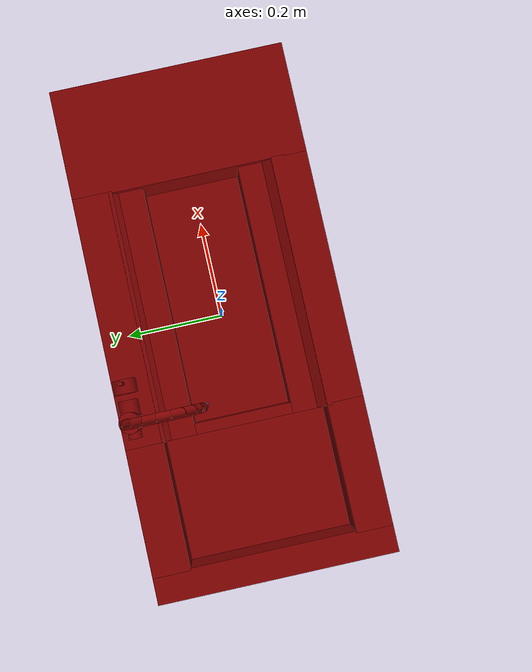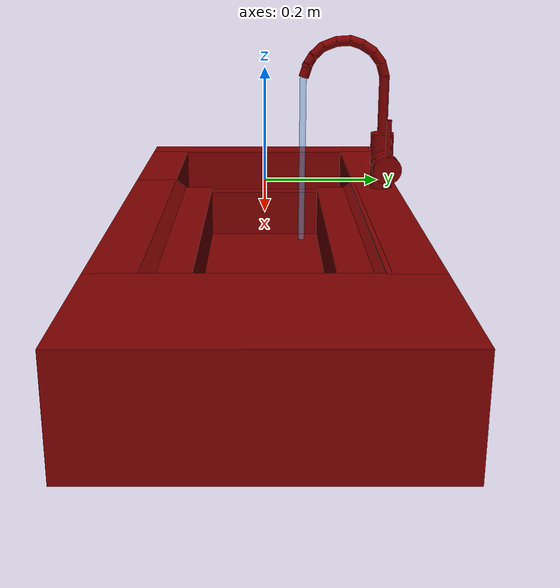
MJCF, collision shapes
<?xml version='1.0' encoding='UTF-8'?>
<mujoco model="model">
  <option timestep="0.002" gravity="0.0 0.0 -9.81"/>
  <compiler angle="radian"/>
  <asset>
    <mesh file="visuals/handle.obj" name="handle_vis"/>
    <mesh file="visuals/Body001.obj" name="Body001_vis"/>
    <mesh file="visuals/spout.obj" name="spout_vis"/>
    <texture file="visuals/T_BC001.png" name="Body001_material" type="2d"/>
    <material name="Body001_material" rgba="1 1 1 1.0" texture="Body001_material" shininess="0.1" specular="1"/>
    <texture file="visuals/T_BC001.png" name="handle_material" type="2d"/>
    <material name="handle_material" rgba="1 1 1 1.0" texture="handle_material" shininess="0.1" specular="5"/>
    <texture file="visuals/T_BC001.png" name="spout_material" type="2d"/>
    <material name="spout_material" rgba="1 1 1 1.0" texture="spout_material" shininess="0.1" specular="5"/>
  </asset>
  <default>
    <default class="visual">
      <geom conaffinity="0" contype="0" group="1" type="mesh"/>
    </default>
    <default class="collision">
      <geom group="0" rgba="0.5 0 0 0.5" solimp="0.998 0.998 0.001" solref="0.001 2"/>
    </default>
    <default class="spawn">
      <geom group="0" rgba="1 1 1 0.5" contype="0" conaffinity="0"/>
      <site group="0" rgba="1 1 1 0.5"/>
    </default>
    <default class="region">
      <geom group="1" conaffinity="0" contype="0" rgba="0 1 0 0"/>
    </default>
  </default>
  <worldbody>
    <body>
      <body name="object">
        <geom mesh="Body001_vis" type="mesh" solimp="0.998 0.998 0.001" solref="0.001 1" friction="0.95 0.3 0.1" class="visual" material="Body001_material"/>
        <geom type="box" pos="-0.5425845980644226 7.902330253273249e-06 -0.1493872106075287" size="0.031223518773913383 0.26477763056755066 0.09092898666858673" quat="1.0 0.0 0.0 0.0" class="collision"/>
        <geom type="box" pos="0.44802284240722656 8.672941476106644e-09 -0.149386927485466" size="0.12578429281711578 0.26478567719459534 0.09092932939529419" quat="1.0 0.0 0.0 0.0" class="collision"/>
        <geom type="box" pos="0.044925495982170105 0.2201080322265625 -0.1493866890668869" size="0.2815152406692505 0.04467969015240669 0.09093040972948074" quat="1.0 0.0 0.0 0.0" class="collision"/>
        <geom type="box" pos="-0.3737524151802063 0.22272610664367676 -0.1493871510028839" size="0.1422635167837143 0.04206153377890587 0.09092926979064941" quat="1.0 0.0 0.0 0.0" class="collision"/>
        <geom type="box" pos="-0.3737524151802063 -0.22431381046772003 -0.14938713610172272" size="0.1422635167837143 0.04047383368015289 0.09092938154935837" quat="1.0 0.0 0.0 0.0" class="collision"/>
        <geom type="box" pos="0.044587209820747375 -0.22442656755447388 -0.14938707649707794" size="0.2803761959075928 0.0403607040643692 0.09092944115400314" quat="1.0 0.0 0.0 0.0" class="collision"/>
        <geom type="box" pos="-0.22452354431152344 3.945129719795659e-05 -0.15915919840335846" size="0.012242678552865982 0.11001994460821152 0.0807158425450325" quat="1.0 0.0 0.0 0.0" class="collision"/>
        <geom type="box" pos="-0.11120790243148804 -0.006130542140454054 -0.219935804605484" size="0.43618446588516235 0.19349530339241028 0.02038153074681759" quat="1.0 0.0 0.0 0.0" class="collision"/>
        <geom type="box" pos="0.0449255034327507 0.14416059851646423 -0.12857580184936523" size="0.2815152108669281 0.03699162229895592 0.05423280969262123" quat="1.0 0.0 0.0 0.0" class="collision"/>
        <geom type="box" pos="0.044925507158041 -0.14806045591831207 -0.12857580184936523" size="0.2815152406692505 0.03928794339299202 0.05423332750797272" quat="1.0 0.0 0.0 0.0" class="collision"/>
        <geom type="box" pos="-0.3714817464351654 -0.0020226642955094576 -0.18452565371990204" size="0.13997656106948853 0.18450702726840973 0.016315434128046036" quat="1.0 0.0 0.0 0.0" class="collision"/>
        <geom type="box" pos="0.05122475326061249 -0.004113413393497467 -0.1845254749059677" size="0.27167677879333496 0.11409635841846466 0.016315411776304245" quat="1.0 0.0 0.0 0.0" class="collision"/>
        <geom type="cylinder" pos="-0.17936426401138306 0.23260730504989624 -0.005379015579819679" size="0.022757161408662796 0.05625209957361221" quat="1.0 0.0 0.0 0.0" class="collision"/>
        <geom type="cylinder" pos="-0.1532038450241089 0.23260730504989624 -0.004038915503770113" size="0.022515717893838882 0.021582122892141342" quat="0.70710688829422 -4.7503021960437763e-08 0.7071066498756409 4.750300774958305e-08" class="collision"/>
        <geom type="cylinder" pos="-0.20414118468761444 0.23260730504989624 -0.004038915503770113" size="0.015823092311620712 0.01029928307980299" quat="0.70710688829422 -4.7503021960437763e-08 0.7071066498756409 4.750300774958305e-08" class="collision"/>
        <geom type="box" pos="0.044469986110925674 -0.17451250553131104 -0.08727122843265533" size="0.025082286447286606 0.28010547161102295 0.0169523973017931" quat="0.6668866276741028 -0.23507952690124512 -0.23507942259311676 -0.6668864488601685" class="collision"/>
        <geom type="box" pos="0.044201962649822235 0.17448177933692932 -0.08703859895467758" size="0.025082286447286606 0.2803735136985779 0.0169523973017931" quat="0.6681765913963318 0.23138730227947235 -0.231387197971344 0.668176531791687" class="collision"/>
        <body name="handle">
          <joint axis="1.0 0.0 0.0" pos="-0.10735443979501724 0.23287050426006317 -0.004628328140825033" limited="true" name="handle_temp_joint" type="hinge" range="-0.7853981633974483 0.7853981633974483" damping="0.5" frictionloss="1" armature="2"/>
          <joint axis="0.0 1.0 0.0" pos="-0.10735443979501724 0.23287050426006317 -0.004628328140825033" limited="true" name="handle_joint" type="hinge" range="0 0.5" damping="0.5" frictionloss="1" armature="2"/>
          <geom mesh="handle_vis" type="mesh" solimp="0.998 0.998 0.001" solref="0.001 1" friction="0.95 0.3 0.1" class="visual" material="handle_material"/>
          <geom type="cylinder" pos="-0.10246364772319794 0.23258903622627258 -0.0045079998672008514" size="0.02655804716050625 0.015345869585871696" quat="0.70710688829422 -4.750302551315144e-08 0.7071066498756409 4.750301130229673e-08" class="collision"/>
          <geom name="handle_main" type="cylinder" pos="-0.09641560167074203 0.23321902751922607 0.054930999875068665" size="0.004774205852299929 0.0363352932035923" quat="1.9470718370939721e-07 -6.717942824252532e-08 1.0 1.3435884227419592e-07" class="collision"/>
        </body>
        <body name="spout">
          <joint axis="0.0 0.0 1.0" pos="-0.17921459674835205 0.23191876709461212 0.14382076263427734" limited="true" name="spout_joint" range="-0.7853981633974483 0.7853981633974483" type="hinge" damping="10"/>
          <site type="cylinder" rgba="0.5 0.75 1 0.5" size="0.006393761839717627 0.16631513833999634" pos="-0.17886139452457428 0.07469233125448227 -0.0020990287885069847" name="water"/>
          <geom mesh="spout_vis" type="mesh" solimp="0.998 0.998 0.001" solref="0.001 1" friction="0.95 0.3 0.1" class="visual" material="spout_material"/>
          <geom type="cylinder" pos="-0.1792595535516739 0.23246406018733978 0.10873384773731232" size="0.009934265166521072 0.056256648153066635" quat="1.0 0.0 0.0 0.0" class="collision" name="spout_main"/>
          <geom type="cylinder" pos="-0.1792595535516739 0.22869440913200378 0.17583346366882324" size="0.009934265166521072 0.014502867124974728" quat="0.9899696707725525 0.14128001034259796 -3.13704640803265e-17 -4.065071242085344e-24" class="collision"/>
          <geom type="cylinder" pos="-0.1792595535516739 0.21768707036972046 0.19830051064491272" size="0.009934265166521072 0.014502864331007004" quat="0.9445487856864929 0.3283711075782776 -7.29130262335687e-17 5.9858797042606585e-24" class="collision"/>
          <geom type="cylinder" pos="-0.1792595535516739 0.1989896446466446 0.21624398231506348" size="0.009934265166521072 0.014502864331007004" quat="0.876102864742279 0.4821242392063141 -1.070530796019024e-16 9.944945395624213e-24" class="collision"/>
          <geom type="cylinder" pos="-0.1792595535516739 0.17561787366867065 0.22770369052886963" size="0.009934265166521072 0.014502865262329578" quat="0.8088570237159729 0.5880053639411926 -1.3056340549523157e-16 1.820550552008966e-24" class="collision"/>
          <geom type="cylinder" pos="-0.1792595535516739 0.1511905938386917 0.23011627793312073" size="0.009934265166521072 0.01450286339968443" quat="0.6837475895881653 0.7297186255455017 -1.6203009715057759e-16 -3.6817580484399365e-23" class="collision"/>
          <geom type="cylinder" pos="-0.1792595535516739 0.12510468065738678 0.2242356538772583" size="0.009934265166521072 0.014502864331007004" quat="0.5643213987350464 0.8255552053451538 -1.8330994706576976e-16 -6.399909879377924e-23" class="collision"/>
          <geom type="cylinder" pos="-0.1792595535516739 0.10354234278202057 0.2115696668624878" size="0.009934265166521072 0.01450286339968443" quat="0.3973284065723419 0.9176765084266663 -2.0376498541368327e-16 -1.1974745720364122e-22" class="collision"/>
          <geom type="cylinder" pos="-0.1792595535516739 0.08755906671285629 0.19241991639137268" size="0.009934265166521072 0.01450286339968443" quat="0.2732285261154175 0.9619491696357727 -2.1359563656462687e-16 6.021812634037838e-23" class="collision"/>
          <geom type="cylinder" pos="-0.1792595535516739 0.08001978695392609 0.17492878437042236" size="0.009934265166521072 0.014502864331007004" quat="0.15607759356498718 0.9877448081970215 -2.1932345864241766e-16 -3.2741813866161035e-23" class="collision"/>
        </body>
        <geom class="region" name="reg_basin_left" type="box" pos="-0.37393657118082047 -0.0016002431511878967 -0.11614048853516579" size="0.13265082782506943 0.17697999423742294 0.05179412087798119"/>
        <geom class="region" name="reg_basin_right" type="box" pos="0.05600747466087341 -0.0005536414682865143 -0.1257910281419754" size="0.2627759704589844 0.10332969745993614 0.04264980351924896"/>
        <geom class="region" name="reg_main" type="box" pos="1.4901161193847656e-08 0.0 -0.149386927485466" size="0.5748086104393005 0.26578761434555054 0.09193023836612702"/>
      </body>
    </body>
  </worldbody>
  <actuator>
    <motor name="handle_joint_actuator" joint="handle_joint" gear="10"/>
    <motor name="handle_temp_joint_actuator" joint="handle_temp_joint" gear="10"/>
    <motor name="spout_joint_actuator" joint="spout_joint" gear="10"/>
  </actuator>
</mujoco>
